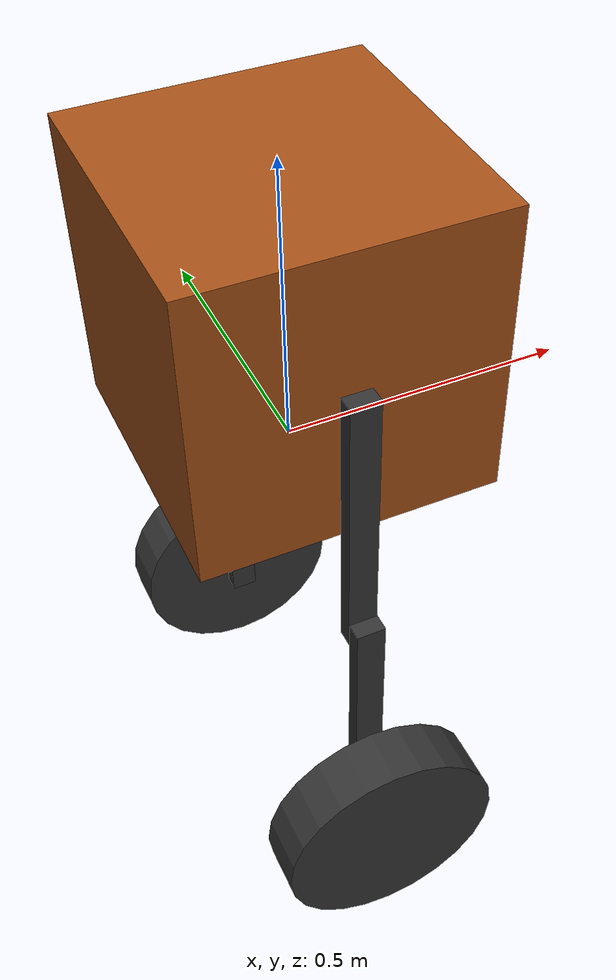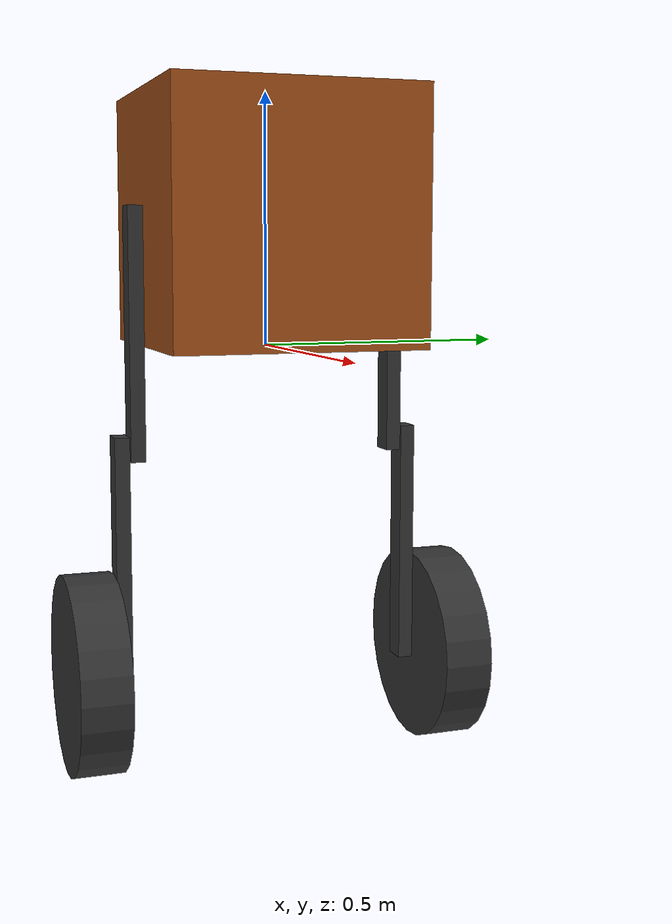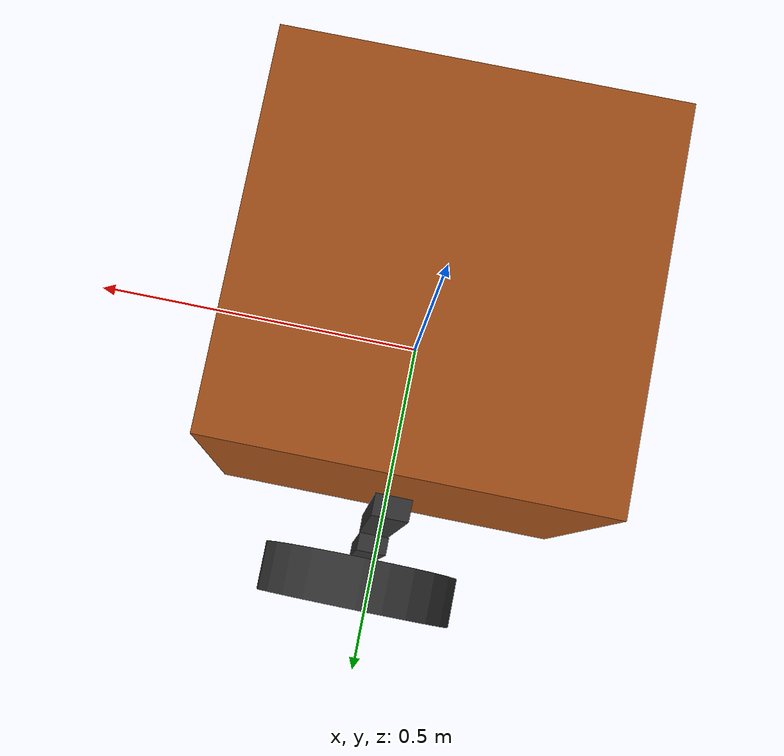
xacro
<?xml version="1.0"?>
<robot name="teeterbot" xmlns:xacro="http://www.ros.org/wiki/xacro">
  <xacro:include filename="$(find teeterbot_description)/urdf/teeterbot_friction.urdf"/>

  <xacro:arg name="wheel_mass" default="1.0" />
  <xacro:arg name="wheel_radius" default="0.2" />
  <xacro:arg name="body_mass" default="10.0" />
  <xacro:arg name="body_width" default="0.5" />
  <xacro:arg name="body_depth" default="0.5" />
  <xacro:arg name="body_length" default="0.5" />

  <xacro:arg name="training_wheels" default="false" />

  <xacro:arg name="thigh_mass" default="0.1" />
  <xacro:arg name="thigh_width" default="0.05" />
  <xacro:arg name="thigh_depth" default="0.03" />
  <xacro:arg name="thigh_length" default="0.5" />

  <xacro:arg name="calf_mass" default="0.1" />
  <xacro:arg name="calf_width" default="0.05" />
  <xacro:arg name="calf_depth" default="0.03" />
  <xacro:arg name="calf_length" default="0.5" />

  <xacro:property name="wheel_mass" value="$(arg wheel_mass)" />
  <xacro:property name="wheel_radius" value="$(arg wheel_radius)" />
  <xacro:property name="wheel_thickness" value="0.1" />
  <xacro:property name="wheelbase" value="${thigh_depth + body_width +0.01}" />

  <xacro:property name="body_mass" value="$(arg body_mass)" />
  <xacro:property name="body_width" value="$(arg body_width)" />
  <xacro:property name="body_depth" value="$(arg body_depth)" />
  <xacro:property name="body_length" value="$(arg body_length)" />

  <xacro:property name="thigh_mass" value="$(arg thigh_mass)" />
  <xacro:property name="thigh_width" value="$(arg thigh_width)" />
  <xacro:property name="thigh_depth" value="$(arg thigh_depth)" />
  <xacro:property name="thigh_length" value="$(arg thigh_length)" />

  <xacro:property name="calf_mass" value="$(arg calf_mass)" />
  <xacro:property name="calf_width" value="$(arg calf_width)" />
  <xacro:property name="calf_depth" value="$(arg calf_depth)" />
  <xacro:property name="calf_length" value="$(arg calf_length)" />

<gazebo>
    <plugin name="gazebo_ros_control" filename="libgazebo_ros_control.so">
     <robotNamespace>/teeterbot</robotNamespace>
     <robotSimType>gazebo_ros_control/DefaultRobotHWSim</robotSimType>
    </plugin>
</gazebo>

<transmission name="left_wheel_control">
    <type>transmission_interface/SimpleTransmission</type>
    <joint name="left_wheel">
     <hardwareInterface>hardware_interface/EffortJointInterface</hardwareInterface>
    </joint>
    <actuator name="left_wheel_motor">
     <hardwareInterface>hardware_interface/EffortJointInterface</hardwareInterface>
     <mechanicalReduction>1</mechanicalReduction>
    </actuator>
</transmission>

<transmission name="right_wheel_control">
    <type>transmission_interface/SimpleTransmission</type>
    <joint name="right_wheel">
     <hardwareInterface>hardware_interface/EffortJointInterface</hardwareInterface>
    </joint>
    <actuator name="right_wheel_motor">
     <hardwareInterface>hardware_interface/EffortJointInterface</hardwareInterface>
     <mechanicalReduction>1</mechanicalReduction>
    </actuator>
</transmission>

<transmission name="right_calf_control">
    <type>transmission_interface/SimpleTransmission</type>
    <joint name="right_calf">
     <hardwareInterface>hardware_interface/EffortJointInterface</hardwareInterface>
    </joint>
    <actuator name="right_calf_motor">
     <hardwareInterface>hardware_interface/EffortJointInterface</hardwareInterface>
     <mechanicalReduction>1</mechanicalReduction>
    </actuator>
</transmission>

<transmission name="right_thigh_control">
    <type>transmission_interface/SimpleTransmission</type>
    <joint name="right_thigh">
     <hardwareInterface>hardware_interface/EffortJointInterface</hardwareInterface>
    </joint>
    <actuator name="right_thigh_motor">
     <hardwareInterface>hardware_interface/EffortJointInterface</hardwareInterface>
     <mechanicalReduction>1</mechanicalReduction>
    </actuator>
</transmission>

<transmission name="left_calf_control">
    <type>transmission_interface/SimpleTransmission</type>
    <joint name="left_calf">
     <hardwareInterface>hardware_interface/EffortJointInterface</hardwareInterface>
    </joint>
    <actuator name="left_calf_motor">
     <hardwareInterface>hardware_interface/EffortJointInterface</hardwareInterface>
     <mechanicalReduction>1</mechanicalReduction>
    </actuator>
</transmission>

<transmission name="left_thigh_control">
    <type>transmission_interface/SimpleTransmission</type>
    <joint name="left_thigh">
     <hardwareInterface>hardware_interface/EffortJointInterface</hardwareInterface>
    </joint>
    <actuator name="left_thigh_motor">
     <hardwareInterface>hardware_interface/EffortJointInterface</hardwareInterface>
     <mechanicalReduction>1</mechanicalReduction>
    </actuator>
</transmission>

  <!-- imu plugin -->
  <gazebo reference="imu_link">
    <gravity>true</gravity>
    <sensor name="imu_sensor" type="imu">
      <always_on>true</always_on>
      <update_rate>200</update_rate>
      <visualize>true</visualize>
      <topic>default_topic</topic>
      <plugin filename="libgazebo_ros_imu_sensor.so" name="imu_plugin">
        <topicName>imu</topicName>
        <bodyName>imu_link</bodyName>
        <updateRateHZ>200.0</updateRateHZ>
        <gaussianNoise>0.0</gaussianNoise>
        <xyzOffset>0 0 0</xyzOffset>
        <rpyOffset>0 0 0</rpyOffset>
        <frameName>imu_link</frameName>
        <initialOrientationAsReference>false</initialOrientationAsReference>
      </plugin>
      <pose>0 0 0 0 0 0</pose>
    </sensor>
  </gazebo>
  <gazebo>
    <plugin name="novatel_gps_sim" filename="libhector_gazebo_ros_gps.so">
      <alwaysOn>1</alwaysOn>
      <updateRate>20.0</updateRate>
      <bodyName>body_com</bodyName>
      <topicName>gps</topicName>
      <velocityTopicName>gps_velocity</velocityTopicName>
      <drift>0.0 0.0 0.0</drift>
      <gaussianNoise>0.0 0.0 0.0</gaussianNoise>
      <velocityDrift>0 0 0</velocityDrift>
      <velocityGaussianNoise>0.0 0.0 0.0</velocityGaussianNoise>
    </plugin>
   </gazebo>

  <!--Body Com-->
  <link name="body_com">
    <inertial>
      <origin xyz="0 0 0" rpy="0 0 0"/>
      <mass value="${body_mass}"/>
      <inertia ixx="${body_mass/12 * (body_width*body_width + body_length*body_length)}" ixy="0" ixz="0" iyy="${body_mass/12 * (body_length*body_length + body_depth*body_depth)}" iyz="0" izz="${body_mass/12 * (body_width*body_width + body_depth*body_depth)}"/>
    </inertial>
    <visual>
      <origin xyz="0 0 0" rpy="0 0 0"/>
      <geometry>
        <box size="${body_depth} ${body_width} ${body_length}"/>
      </geometry>
      <material name="orange"/>
    </visual>
    <collision name="collision_chassis">
      <origin xyz="0 0 0" rpy="0 0 0"/>
      <geometry>
        <box size="${body_depth} ${body_width} ${body_length}"/>
      </geometry>
    </collision>
  </link>

  <!-- Thigh -->
  <xacro:macro name="thigh" params="name y_offset" >
    <link name="${name}" >
      <inertial>
        <origin xyz="${thigh_length/2 -0.025} 0 0" rpy="0 0 0"/>
        <mass value="${thigh_mass}"/>
        <inertia ixx="${thigh_mass/12 * (thigh_width*thigh_width + thigh_depth*thigh_depth)}" ixy="0" ixz="0" iyy="${thigh_mass/12 * (thigh_length*thigh_length + thigh_depth*thigh_depth)}" iyz="0" izz="${thigh_mass/12 * (thigh_width*thigh_width + thigh_length*thigh_length)}"/>
      </inertial>
      <visual>
        <origin xyz="${thigh_length/2 -0.025} 0 0" rpy="0 0 0"/>
        <geometry>
          <box size="${thigh_length} ${thigh_width} ${thigh_depth}"/>
        </geometry>
        <material name="grey"/>
      </visual>
      <collision name="collision_${name}">
        <origin xyz="${thigh_length/2 -0.025} 0 0" rpy="0 0 0"/>
        <geometry>
          <box size="${thigh_length} ${thigh_width} ${thigh_depth}"/>
        </geometry>
      </collision>
    </link>
    <joint name="${name}" type="continuous">
      <origin xyz="0 ${y_offset} 0" rpy="-1.570796 1.570796 0"/>
      <parent link="body_com"/>
      <child link="${name}"/>
      <axis xyz="0 0 1" />
    </joint>
  </xacro:macro>

  <thigh name="left_thigh" y_offset="${wheelbase/2}" />
  <thigh name="right_thigh" y_offset="${-wheelbase/2}" />

  <!-- Calf -->
  <xacro:macro name="calf" params="name offset parent" >
    <link name="${name}" >
      <inertial>
        <origin xyz="${calf_length/2 -0.025} 0 0" rpy="0 0 0"/>
        <mass value="${calf_mass}"/>
         <inertia ixx="${calf_mass/12 * (calf_width*calf_width + calf_depth*calf_depth)}" ixy="0" ixz="0" iyy="${calf_mass/12 * (calf_length*calf_length + calf_depth*calf_depth)}" iyz="0" izz="${calf_mass/12 * (calf_width*calf_width + calf_length*calf_length)}"/>
        </inertial>
      <visual>
        <origin xyz="${calf_length/2 -0.025} 0 0" rpy="0 0 0"/>
        <geometry>
          <box size="${calf_length} ${calf_width} ${calf_depth}"/>
        </geometry>
        <material name="grey"/>
      </visual>
      <collision name="collision_${name}">
        <origin xyz="${calf_length/2 -0.025} 0 0" rpy="0 0 0"/>
        <geometry>
          <box size="${calf_length} ${calf_width} ${calf_depth}"/>
        </geometry>
      </collision>
    </link>
    <joint name="${name}" type="continuous">
      <origin xyz="${calf_length -0.05} 0 ${offset}" rpy="0 0 0"/>
      <parent link="${parent}"/>
      <child link="${name}"/>
      <axis xyz="0 0 1" />
    </joint>
  </xacro:macro>

  <calf name="left_calf" offset="${calf_depth/2 + thigh_depth/2 + 0.002}" parent="left_thigh" />
  <calf name="right_calf" offset="-${calf_depth/2 + thigh_depth/2 + 0.002}" parent="right_thigh" />

  <xacro:macro name="wheel" params="name offset parent" >
    <link name="${name}" >
      <inertial>
        <origin xyz="0 0 0" rpy="0 0 0"/>
        <mass value="${wheel_mass}"/>
        <inertia ixx="${wheel_mass/12*(3*wheel_radius*wheel_radius + wheel_thickness*wheel_thickness)}" ixy="0" ixz="0" iyy="${wheel_mass/12*(3*wheel_radius*wheel_radius + wheel_thickness*wheel_thickness)}" iyz="0" izz="${wheel_mass/2 * wheel_radius*wheel_radius}"/>
      </inertial>
      <visual>
        <origin xyz="0 0 0" rpy="0 0 0"/>
        <geometry>
          <cylinder radius="${wheel_radius}" length="${wheel_thickness}"/>
        </geometry>
        <material name="grey"/>
      </visual>
      <collision name="collision_${name}">
        <origin xyz="0 0 0" rpy="0 0 0"/>
        <geometry>
          <cylinder radius="${wheel_radius}" length="${wheel_thickness}"/>
        </geometry>
      </collision>
    </link>
    <joint name="${name}" type="continuous">
      <origin xyz="${calf_length-0.05} 0 ${offset}" rpy="0 0 0"/>
      <parent link="${parent}"/>
      <child link="${name}"/>
      <axis xyz="0 0 1" />
    </joint>
  </xacro:macro>

  <wheel name="left_wheel" offset="${wheel_thickness/2 +0.017}" parent="left_calf" />
  <wheel name="right_wheel" offset="${-wheel_thickness/2 -0.017}" parent="right_calf" />

  <!-- IMU -->
  <link name="imu_link">
    <collision>
      <origin xyz="0 0 0" rpy="0 0 0"/>
      <geometry>
        <box size="0.02 0.015 0.008"/>
      </geometry>
    </collision>

    <visual>
      <origin xyz="0 0 0" rpy="0 0 0"/>
    <geometry>
        <box size="0.02 0.015 0.008"/>
      </geometry>
    </visual>

    <inertial>
      <mass value="1e-5" />
      <origin xyz="0 0 0" rpy="0 0 0"/>
      <inertia ixx="0" ixy="0" ixz="0" iyy="0" iyz="0" izz="0" />
    </inertial>
  </link>

  <joint name="imujoint" type="fixed">
    <origin xyz="0 0 0" rpy="0 0 0" />
    <parent link="body_com" />
    <child link="imu_link" />
    <axis xyz="0 0 0" />
  </joint>

  <!--Base Link-->
  <link name="base_link">
    <inertial>
      <origin xyz="0 0 0" rpy="0 0 0"/>
      <mass value="0.01"/>
      <inertia ixx="0.01" ixy="0" ixz="0" iyy="0.01" iyz="0" izz="0.01"/>
    </inertial>
    <xacro:if value="$(arg training_wheels)" >
      <collision name="training_wheel_1">
        <origin xyz="1 0 ${0.025-wheel_radius}" rpy="0 0 0"/>
        <geometry>
          <sphere radius="0.024"/>
        </geometry>
      </collision>
      <collision name="training_wheel_2">
        <origin xyz="-1 0 ${0.025-wheel_radius}" rpy="0 0 0"/>
        <geometry>
          <sphere radius="0.024"/>
        </geometry>
      </collision>
    </xacro:if>
  </link>

  <joint name="base_com" type="fixed">
    <origin xyz="0 0 ${body_length/2}" rpy="0 0 0"/>
    <parent link="base_link"/>
    <child link="body_com"/>
  </joint>

  <material name="grey">
    <color rgba="0.2 0.2 0.2 1.0"/>
  </material>

  <material name="orange">
    <color rgba="0.64 0.313939 0.095351 1.0"/>
  </material>
</robot>
